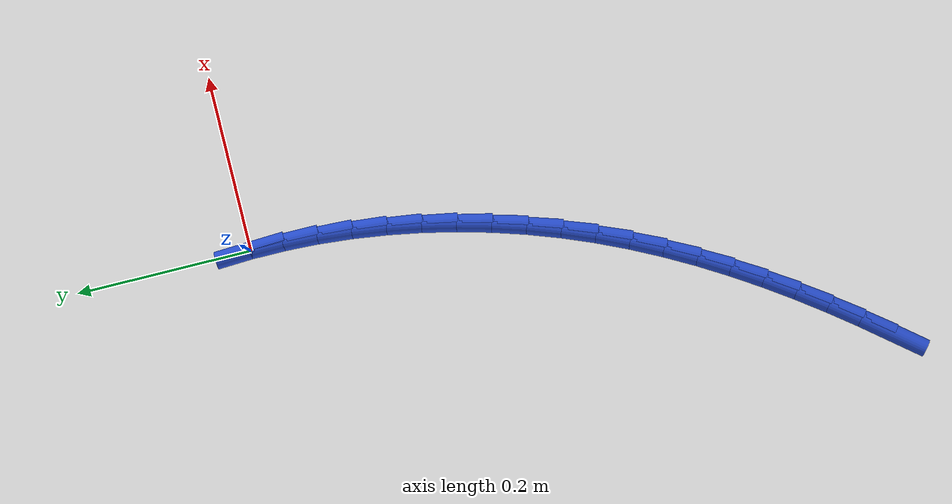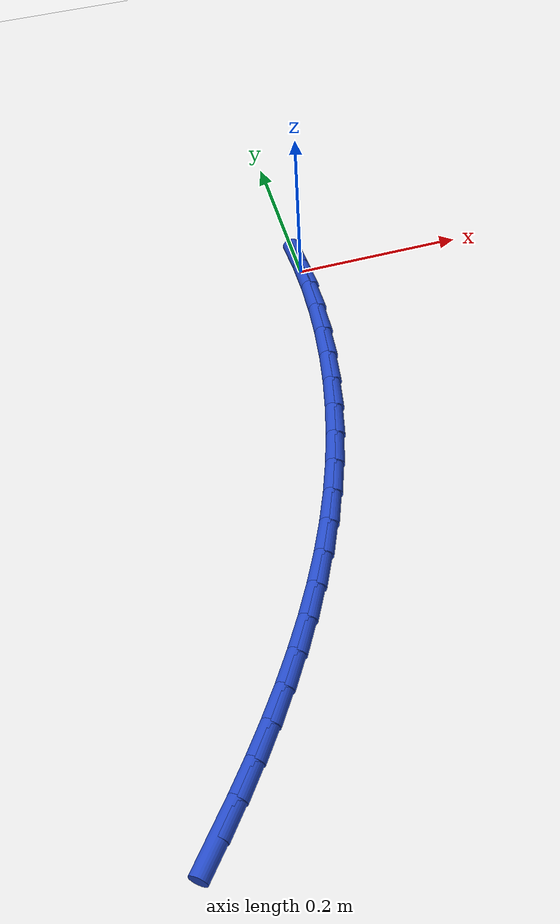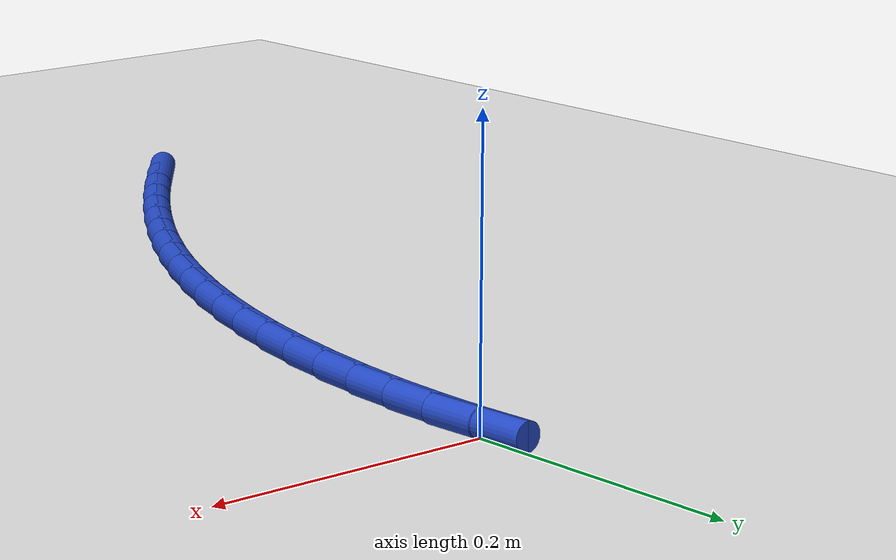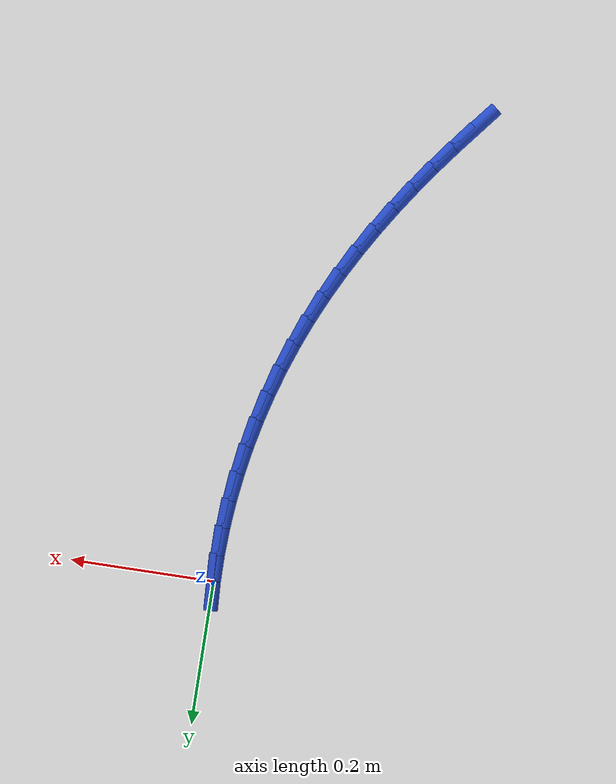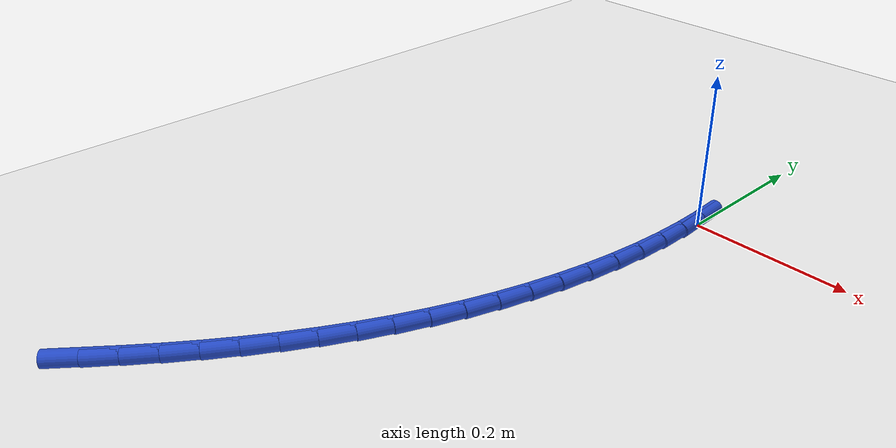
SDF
<sdf version="1.6">
 <world name="default">
  <model name="ground_plane">
   <static>1</static>
   <link name="link">
    <collision name="collision">
     <geometry><plane><normal>0 0 1</normal><size>100 100</size></plane></geometry>
     <surface><friction><ode><mu>100</mu><mu2>50</mu2></ode></friction></surface>
    </collision>
    <visual name="visual">
     <cast_shadows>0</cast_shadows>
     <geometry><plane><normal>0 0 1</normal><size>100 100</size></plane></geometry>
     <material>
      <script><uri>file://media/materials/scripts/gazebo.material</uri><name>Gazebo/WhiteGlow</name></script>
     </material>
    </visual>
   </link>
  </model>
  <model name="line">
   <link name="link_0">
    <pose>2.2551405187698492e-17 -3.469446951953614e-17 0.01 0 1.57 -1.5224158664125622</pose>
    <collision name="collision">
     <geometry><cylinder><radius>0.01</radius><length>0.08</length></cylinder></geometry>
    </collision>
    <visual name="visual">
     <material>
      <script><name>Gazebo/Blue</name><uri>file://media/materials/scripts/gazebo.material</uri></script>
     </material>
     <geometry><cylinder><radius>0.01</radius><length>0.08</length></cylinder></geometry>
    </visual>
   </link>
   <link name="link_151">
    <pose>-0.262652787461832 -0.6757061189513378 0.01 0 1.57 0.8904801233706963</pose>
    <collision name="collision">
     <geometry><cylinder><radius>0.01</radius><length>0.08</length></cylinder></geometry>
    </collision>
    <visual name="visual">
     <material>
      <script><name>Gazebo/Blue</name><uri>file://media/materials/scripts/gazebo.material</uri></script>
     </material>
     <geometry><cylinder><radius>0.01</radius><length>0.08</length></cylinder></geometry>
    </visual>
   </link>
   <link name="link_152">
    <pose>-0.23801714568525775 -0.6452610941964798 0.01 0 1.57 0.9141585524783142</pose>
    <collision name="collision">
     <geometry><cylinder><radius>0.01</radius><length>0.08</length></cylinder></geometry>
    </collision>
    <visual name="visual">
     <material>
      <script><name>Gazebo/Blue</name><uri>file://media/materials/scripts/gazebo.material</uri></script>
     </material>
     <geometry><cylinder><radius>0.01</radius><length>0.08</length></cylinder></geometry>
    </visual>
   </link>
   <link name="link_153">
    <pose>-0.21414918171043396 -0.61429315749993 0.01 0 1.57 0.9400621290317306</pose>
    <collision name="collision">
     <geometry><cylinder><radius>0.01</radius><length>0.08</length></cylinder></geometry>
    </collision>
    <visual name="visual">
     <material>
      <script><name>Gazebo/Blue</name><uri>file://media/materials/scripts/gazebo.material</uri></script>
     </material>
     <geometry><cylinder><radius>0.01</radius><length>0.08</length></cylinder></geometry>
    </visual>
   </link>
   <link name="link_154">
    <pose>-0.1911321911330581 -0.5827733889652881 0.01 0 1.57 0.9682212198230296</pose>
    <collision name="collision">
     <geometry><cylinder><radius>0.01</radius><length>0.08</length></cylinder></geometry>
    </collision>
    <visual name="visual">
     <material>
      <script><name>Gazebo/Blue</name><uri>file://media/materials/scripts/gazebo.material</uri></script>
     </material>
     <geometry><cylinder><radius>0.01</radius><length>0.08</length></cylinder></geometry>
    </visual>
   </link>
   <link name="link_155">
    <pose>-0.16904947404676385 -0.5506728637799996 0.01 0 1.57 0.9986555641344912</pose>
    <collision name="collision">
     <geometry><cylinder><radius>0.01</radius><length>0.08</length></cylinder></geometry>
    </collision>
    <visual name="visual">
     <material>
      <script><name>Gazebo/Blue</name><uri>file://media/materials/scripts/gazebo.material</uri></script>
     </material>
     <geometry><cylinder><radius>0.01</radius><length>0.08</length></cylinder></geometry>
    </visual>
   </link>
   <link name="link_156">
    <pose>-0.14798433054518526 -0.5179626571315106 0.01 0 1.57 1.0313699993408716</pose>
    <collision name="collision">
     <geometry><cylinder><radius>0.01</radius><length>0.08</length></cylinder></geometry>
    </collision>
    <visual name="visual">
     <material>
      <script><name>Gazebo/Blue</name><uri>file://media/materials/scripts/gazebo.material</uri></script>
     </material>
     <geometry><cylinder><radius>0.01</radius><length>0.08</length></cylinder></geometry>
    </visual>
   </link>
   <link name="link_157">
    <pose>-0.12802006072195646 -0.4846138442072673 0.01 0 1.57 1.0663496397801029</pose>
    <collision name="collision">
     <geometry><cylinder><radius>0.01</radius><length>0.08</length></cylinder></geometry>
    </collision>
    <visual name="visual">
     <material>
      <script><name>Gazebo/Blue</name><uri>file://media/materials/scripts/gazebo.material</uri></script>
     </material>
     <geometry><cylinder><radius>0.01</radius><length>0.08</length></cylinder></geometry>
    </visual>
   </link>
   <link name="link_158">
    <pose>-0.10923996467071119 -0.4505975001947149 0.01 0 1.57 1.1035548656833363</pose>
    <collision name="collision">
     <geometry><cylinder><radius>0.01</radius><length>0.08</length></cylinder></geometry>
    </collision>
    <visual name="visual">
     <material>
      <script><name>Gazebo/Blue</name><uri>file://media/materials/scripts/gazebo.material</uri></script>
     </material>
     <geometry><cylinder><radius>0.01</radius><length>0.08</length></cylinder></geometry>
    </visual>
   </link>
   <link name="link_159">
    <pose>-0.09172734248508431 -0.41588470028130087 0.01 0 1.57 1.1429164102895197</pose>
    <collision name="collision">
     <geometry><cylinder><radius>0.01</radius><length>0.08</length></cylinder></geometry>
    </collision>
    <visual name="visual">
     <material>
      <script><name>Gazebo/Blue</name><uri>file://media/materials/scripts/gazebo.material</uri></script>
     </material>
     <geometry><cylinder><radius>0.01</radius><length>0.08</length></cylinder></geometry>
    </visual>
   </link>
   <link name="link_160">
    <pose>-0.07556549425870947 -0.38044651965447057 0.01 0 1.57 1.1842889389091682</pose>
    <collision name="collision">
     <geometry><cylinder><radius>0.01</radius><length>0.08</length></cylinder></geometry>
    </collision>
    <visual name="visual">
     <material>
      <script><name>Gazebo/Blue</name><uri>file://media/materials/scripts/gazebo.material</uri></script>
     </material>
     <geometry><cylinder><radius>0.01</radius><length>0.08</length></cylinder></geometry>
    </visual>
   </link>
   <link name="link_161">
    <pose>-0.06083693329817672 -0.3442564535265512 0.01 0 1.57 1.2264661335190923</pose>
    <collision name="collision">
     <geometry><cylinder><radius>0.01</radius><length>0.08</length></cylinder></geometry>
    </collision>
    <visual name="visual">
     <material>
      <script><name>Gazebo/Blue</name><uri>file://media/materials/scripts/gazebo.material</uri></script>
     </material>
     <geometry><cylinder><radius>0.01</radius><length>0.08</length></cylinder></geometry>
    </visual>
   </link>
   <link name="link_162">
    <pose>-0.04760290144947203 -0.3073534245521524 0.01 0 1.57 1.2683747764655302</pose>
    <collision name="collision">
     <geometry><cylinder><radius>0.01</radius><length>0.08</length></cylinder></geometry>
    </collision>
    <visual name="visual">
     <material>
      <script><name>Gazebo/Blue</name><uri>file://media/materials/scripts/gazebo.material</uri></script>
     </material>
     <geometry><cylinder><radius>0.01</radius><length>0.08</length></cylinder></geometry>
    </visual>
   </link>
   <link name="link_163">
    <pose>-0.03590143946218612 -0.26984771806395874 0.01 0 1.57 1.310189970925309</pose>
    <collision name="collision">
     <geometry><cylinder><radius>0.01</radius><length>0.08</length></cylinder></geometry>
    </collision>
    <visual name="visual">
     <material>
      <script><name>Gazebo/Blue</name><uri>file://media/materials/scripts/gazebo.material</uri></script>
     </material>
     <geometry><cylinder><radius>0.01</radius><length>0.08</length></cylinder></geometry>
    </visual>
   </link>
   <link name="link_164">
    <pose>-0.02576941445928474 -0.23185322927315774 0.01 0 1.57 1.3521474255927637</pose>
    <collision name="collision">
     <geometry><cylinder><radius>0.01</radius><length>0.08</length></cylinder></geometry>
    </collision>
    <visual name="visual">
     <material>
      <script><name>Gazebo/Blue</name><uri>file://media/materials/scripts/gazebo.material</uri></script>
     </material>
     <geometry><cylinder><radius>0.01</radius><length>0.08</length></cylinder></geometry>
    </visual>
   </link>
   <link name="link_165">
    <pose>-0.017243693563732856 -0.19348385339093466 0.01 0 1.57 1.3944821152429243</pose>
    <collision name="collision">
     <geometry><cylinder><radius>0.01</radius><length>0.08</length></cylinder></geometry>
    </collision>
    <visual name="visual">
     <material>
      <script><name>Gazebo/Blue</name><uri>file://media/materials/scripts/gazebo.material</uri></script>
     </material>
     <geometry><cylinder><radius>0.01</radius><length>0.08</length></cylinder></geometry>
    </visual>
   </link>
   <link name="link_166">
    <pose>-0.010361143898495734 -0.15485348562847565 0.01 0 1.57 1.4374294463733404</pose>
    <collision name="collision">
     <geometry><cylinder><radius>0.01</radius><length>0.08</length></cylinder></geometry>
    </collision>
    <visual name="visual">
     <material>
      <script><name>Gazebo/Blue</name><uri>file://media/materials/scripts/gazebo.material</uri></script>
     </material>
     <geometry><cylinder><radius>0.01</radius><length>0.08</length></cylinder></geometry>
    </visual>
   </link>
   <link name="link_167">
    <pose>-0.005158632586538628 -0.11607602119696668 0.01 0 1.57 1.4812261196998078</pose>
    <collision name="collision">
     <geometry><cylinder><radius>0.01</radius><length>0.08</length></cylinder></geometry>
    </collision>
    <visual name="visual">
     <material>
      <script><name>Gazebo/Blue</name><uri>file://media/materials/scripts/gazebo.material</uri></script>
     </material>
     <geometry><cylinder><radius>0.01</radius><length>0.08</length></cylinder></geometry>
    </visual>
   </link>
   <link name="link_168">
    <pose>-0.0016730267508267456 -0.07726535530759313 0.01 0 1.57 1.5261105119945992</pose>
    <collision name="collision">
     <geometry><cylinder><radius>0.01</radius><length>0.08</length></cylinder></geometry>
    </collision>
    <visual name="visual">
     <material>
      <script><name>Gazebo/Blue</name><uri>file://media/materials/scripts/gazebo.material</uri></script>
     </material>
     <geometry><cylinder><radius>0.01</radius><length>0.08</length></cylinder></geometry>
    </visual>
   </link>
   <link name="link_169">
    <pose>5.8806485674526426e-05 -0.03853538317154244 0.01 0 1.57 -1.5692702892889663</pose>
    <collision name="collision">
     <geometry><cylinder><radius>0.01</radius><length>0.08</length></cylinder></geometry>
    </collision>
    <visual name="visual">
     <material>
      <script><name>Gazebo/Blue</name><uri>file://media/materials/scripts/gazebo.material</uri></script>
     </material>
     <geometry><cylinder><radius>0.01</radius><length>0.08</length></cylinder></geometry>
    </visual>
   </link>
   <link name="link_170">
    <pose>2.2551405187698492e-17 0.0 0.01 0 1.57 -1.5214911362397856</pose>
    <collision name="collision">
     <geometry><cylinder><radius>0.01</radius><length>0.08</length></cylinder></geometry>
    </collision>
    <visual name="visual">
     <material>
      <script><name>Gazebo/Blue</name><uri>file://media/materials/scripts/gazebo.material</uri></script>
     </material>
     <geometry><cylinder><radius>0.01</radius><length>0.08</length></cylinder></geometry>
    </visual>
   </link>
  </model>
 </world>
</sdf>
